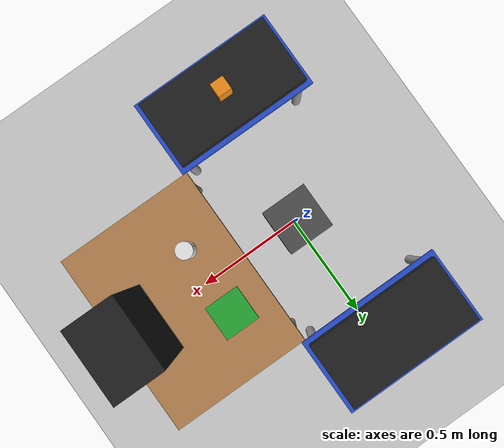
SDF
<?xml version="1.0" ?>
<sdf version="1.7">
  <world name="mery6_workcell">

    <plugin name="ros_link_attacher_plugin" filename="libgazebo_ros_link_attacher.so"/>

    <light name="sun" type="directional">
      <cast_shadows>1</cast_shadows>
      <pose>0 0 10 0 0 0</pose>
      <diffuse>0.8 0.8 0.8 1</diffuse>
      <specular>0.2 0.2 0.2 1</specular>
      <direction>-0.5 0.1 -0.9</direction>
    </light>

    <model name="ground_plane">
      <static>1</static>
      <link name="ground_plane_link">
        <collision name="collision">
          <geometry><plane><normal>0 0 1</normal><size>100 100</size></plane></geometry>
          <surface><friction><ode><mu>100</mu><mu2>50</mu2></ode></friction></surface>
        </collision>
        <visual name="visual">
          <cast_shadows>0</cast_shadows>
          <geometry><plane><normal>0 0 1</normal><size>100 100</size></plane></geometry>
          <material><script><uri>file://media/materials/scripts/gazebo.material</uri><name>Gazebo/Grey</name></script></material>
        </visual>
      </link>
    </model>

    <physics type="ode">
      <max_step_size>0.001</max_step_size>
      <real_time_factor>1</real_time_factor>
      <real_time_update_rate>1000</real_time_update_rate>
    </physics>
    <gravity>0 0 -9.8</gravity>
    <scene>
      <ambient>0.4 0.4 0.4 1</ambient>
      <background>0.7 0.7 0.7 1</background>
      <shadows>1</shadows>
    </scene>

    <!-- Robot pedestal -->
    <model name="pedestal">
      <static>1</static>
      <pose>0 0 0.20 0 0 0</pose>
      <link name="link">
        <collision name="collision"><geometry><box><size>0.20 0.20 0.40</size></box></geometry></collision>
        <visual name="visual">
          <geometry><box><size>0.20 0.20 0.40</size></box></geometry>
          <material><script><uri>file://media/materials/scripts/gazebo.material</uri><name>Gazebo/DarkGrey</name></script></material>
        </visual>
      </link>
    </model>

    <!-- ===================== Barista fixtures (unchanged from barista.world) ===================== -->
    <model name="table">
      <static>1</static>
      <pose>0.55 0 0 0 0 0</pose>
      <link name="link">
        <collision name="top"><pose>0 0 0.40 0 0 0</pose><geometry><box><size>0.60 0.80 0.03</size></box></geometry>
          <surface><friction><ode><mu>0.8</mu><mu2>0.8</mu2></ode></friction></surface></collision>
        <visual name="top_visual"><pose>0 0 0.40 0 0 0</pose><geometry><box><size>0.60 0.80 0.03</size></box></geometry>
          <material><script><uri>file://media/materials/scripts/gazebo.material</uri><name>Gazebo/Wood</name></script></material></visual>
        <collision name="leg1"><pose> 0.27  0.37 0.1925 0 0 0</pose><geometry><cylinder><radius>0.02</radius><length>0.385</length></cylinder></geometry></collision>
        <visual    name="leg1_v"><pose> 0.27  0.37 0.1925 0 0 0</pose><geometry><cylinder><radius>0.02</radius><length>0.385</length></cylinder></geometry>
          <material><script><uri>file://media/materials/scripts/gazebo.material</uri><name>Gazebo/Grey</name></script></material></visual>
        <collision name="leg2"><pose> 0.27 -0.37 0.1925 0 0 0</pose><geometry><cylinder><radius>0.02</radius><length>0.385</length></cylinder></geometry></collision>
        <visual    name="leg2_v"><pose> 0.27 -0.37 0.1925 0 0 0</pose><geometry><cylinder><radius>0.02</radius><length>0.385</length></cylinder></geometry>
          <material><script><uri>file://media/materials/scripts/gazebo.material</uri><name>Gazebo/Grey</name></script></material></visual>
        <collision name="leg3"><pose>-0.27  0.37 0.1925 0 0 0</pose><geometry><cylinder><radius>0.02</radius><length>0.385</length></cylinder></geometry></collision>
        <visual    name="leg3_v"><pose>-0.27  0.37 0.1925 0 0 0</pose><geometry><cylinder><radius>0.02</radius><length>0.385</length></cylinder></geometry>
          <material><script><uri>file://media/materials/scripts/gazebo.material</uri><name>Gazebo/Grey</name></script></material></visual>
        <collision name="leg4"><pose>-0.27 -0.37 0.1925 0 0 0</pose><geometry><cylinder><radius>0.02</radius><length>0.385</length></cylinder></geometry></collision>
        <visual    name="leg4_v"><pose>-0.27 -0.37 0.1925 0 0 0</pose><geometry><cylinder><radius>0.02</radius><length>0.385</length></cylinder></geometry>
          <material><script><uri>file://media/materials/scripts/gazebo.material</uri><name>Gazebo/Grey</name></script></material></visual>
      </link>
    </model>

    <model name="cup">
      <static>0</static>
      <pose>0.42 -0.15 0.465 0 0 0</pose>
      <link name="link">
        <inertial>
          <mass>0.05</mass>
          <inertia><ixx>5.7e-05</ixx><iyy>5.7e-05</iyy><izz>3.1e-05</izz><ixy>0</ixy><ixz>0</ixz><iyz>0</iyz></inertia>
        </inertial>
        <collision name="collision">
          <geometry><cylinder><radius>0.035</radius><length>0.10</length></cylinder></geometry>
          <surface><friction><ode><mu>1.0</mu><mu2>1.0</mu2></ode></friction>
            <contact><ode><kp>1e6</kp><kd>100</kd><min_depth>0.001</min_depth></ode></contact></surface>
        </collision>
        <visual name="visual">
          <geometry><cylinder><radius>0.035</radius><length>0.10</length></cylinder></geometry>
          <material><script><uri>file://media/materials/scripts/gazebo.material</uri><name>Gazebo/White</name></script></material>
        </visual>
      </link>
    </model>

    <model name="coffee_machine">
      <static>1</static>
      <pose>0.75 0 0.615 0 0 0</pose>
      <link name="link">
        <collision name="collision"><geometry><box><size>0.20 0.30 0.40</size></box></geometry></collision>
        <visual name="visual">
          <geometry><box><size>0.20 0.30 0.40</size></box></geometry>
          <material><script><uri>file://media/materials/scripts/gazebo.material</uri><name>Gazebo/Black</name></script></material>
        </visual>
      </link>
    </model>

    <model name="place_pad">
      <static>1</static>
      <pose>0.42 0.15 0.42 0 0 0</pose>
      <link name="link">
        <collision name="collision"><geometry><box><size>0.15 0.15 0.01</size></box></geometry>
          <surface><friction><ode><mu>1.0</mu><mu2>1.0</mu2></ode></friction></surface></collision>
        <visual name="visual">
          <geometry><box><size>0.15 0.15 0.01</size></box></geometry>
          <material><script><uri>file://media/materials/scripts/gazebo.material</uri><name>Gazebo/Green</name></script></material>
        </visual>
      </link>
    </model>

    <!-- ===================== Conveyor fixtures (left / right of the robot, static) ===================== -->
    <model name="input_belt">
      <static>1</static>
      <pose>-0.05 -0.58 0 0 0 0</pose>
      <link name="link">
        <collision name="body"><pose>0 0 0.39 0 0 0</pose><geometry><box><size>0.60 0.30 0.05</size></box></geometry>
          <surface><friction><ode><mu>1.0</mu><mu2>1.0</mu2></ode></friction></surface></collision>
        <visual name="body_visual"><pose>0 0 0.39 0 0 0</pose><geometry><box><size>0.60 0.30 0.05</size></box></geometry>
          <material><script><uri>file://media/materials/scripts/gazebo.material</uri><name>Gazebo/Black</name></script></material></visual>
        <visual name="frame_visual"><pose>0 0 0.36 0 0 0</pose><geometry><box><size>0.64 0.34 0.02</size></box></geometry>
          <material><script><uri>file://media/materials/scripts/gazebo.material</uri><name>Gazebo/Blue</name></script></material></visual>
        <collision name="leg1"><pose> 0.28  0.13 0.175 0 0 0</pose><geometry><cylinder><radius>0.02</radius><length>0.35</length></cylinder></geometry></collision>
        <visual    name="leg1_v"><pose> 0.28  0.13 0.175 0 0 0</pose><geometry><cylinder><radius>0.02</radius><length>0.35</length></cylinder></geometry>
          <material><script><uri>file://media/materials/scripts/gazebo.material</uri><name>Gazebo/Grey</name></script></material></visual>
        <collision name="leg2"><pose> 0.28 -0.13 0.175 0 0 0</pose><geometry><cylinder><radius>0.02</radius><length>0.35</length></cylinder></geometry></collision>
        <visual    name="leg2_v"><pose> 0.28 -0.13 0.175 0 0 0</pose><geometry><cylinder><radius>0.02</radius><length>0.35</length></cylinder></geometry>
          <material><script><uri>file://media/materials/scripts/gazebo.material</uri><name>Gazebo/Grey</name></script></material></visual>
        <collision name="leg3"><pose>-0.28  0.13 0.175 0 0 0</pose><geometry><cylinder><radius>0.02</radius><length>0.35</length></cylinder></geometry></collision>
        <visual    name="leg3_v"><pose>-0.28  0.13 0.175 0 0 0</pose><geometry><cylinder><radius>0.02</radius><length>0.35</length></cylinder></geometry>
          <material><script><uri>file://media/materials/scripts/gazebo.material</uri><name>Gazebo/Grey</name></script></material></visual>
        <collision name="leg4"><pose>-0.28 -0.13 0.175 0 0 0</pose><geometry><cylinder><radius>0.02</radius><length>0.35</length></cylinder></geometry></collision>
        <visual    name="leg4_v"><pose>-0.28 -0.13 0.175 0 0 0</pose><geometry><cylinder><radius>0.02</radius><length>0.35</length></cylinder></geometry>
          <material><script><uri>file://media/materials/scripts/gazebo.material</uri><name>Gazebo/Grey</name></script></material></visual>
      </link>
    </model>

    <model name="output_belt">
      <static>1</static>
      <pose>-0.05 0.58 0 0 0 0</pose>
      <link name="link">
        <collision name="body"><pose>0 0 0.39 0 0 0</pose><geometry><box><size>0.60 0.30 0.05</size></box></geometry>
          <surface><friction><ode><mu>1.0</mu><mu2>1.0</mu2></ode></friction></surface></collision>
        <visual name="body_visual"><pose>0 0 0.39 0 0 0</pose><geometry><box><size>0.60 0.30 0.05</size></box></geometry>
          <material><script><uri>file://media/materials/scripts/gazebo.material</uri><name>Gazebo/Black</name></script></material></visual>
        <visual name="frame_visual"><pose>0 0 0.36 0 0 0</pose><geometry><box><size>0.64 0.34 0.02</size></box></geometry>
          <material><script><uri>file://media/materials/scripts/gazebo.material</uri><name>Gazebo/Blue</name></script></material></visual>
        <collision name="leg1"><pose> 0.28  0.13 0.175 0 0 0</pose><geometry><cylinder><radius>0.02</radius><length>0.35</length></cylinder></geometry></collision>
        <visual    name="leg1_v"><pose> 0.28  0.13 0.175 0 0 0</pose><geometry><cylinder><radius>0.02</radius><length>0.35</length></cylinder></geometry>
          <material><script><uri>file://media/materials/scripts/gazebo.material</uri><name>Gazebo/Grey</name></script></material></visual>
        <collision name="leg2"><pose> 0.28 -0.13 0.175 0 0 0</pose><geometry><cylinder><radius>0.02</radius><length>0.35</length></cylinder></geometry></collision>
        <visual    name="leg2_v"><pose> 0.28 -0.13 0.175 0 0 0</pose><geometry><cylinder><radius>0.02</radius><length>0.35</length></cylinder></geometry>
          <material><script><uri>file://media/materials/scripts/gazebo.material</uri><name>Gazebo/Grey</name></script></material></visual>
        <collision name="leg3"><pose>-0.28  0.13 0.175 0 0 0</pose><geometry><cylinder><radius>0.02</radius><length>0.35</length></cylinder></geometry></collision>
        <visual    name="leg3_v"><pose>-0.28  0.13 0.175 0 0 0</pose><geometry><cylinder><radius>0.02</radius><length>0.35</length></cylinder></geometry>
          <material><script><uri>file://media/materials/scripts/gazebo.material</uri><name>Gazebo/Grey</name></script></material></visual>
        <collision name="leg4"><pose>-0.28 -0.13 0.175 0 0 0</pose><geometry><cylinder><radius>0.02</radius><length>0.35</length></cylinder></geometry></collision>
        <visual    name="leg4_v"><pose>-0.28 -0.13 0.175 0 0 0</pose><geometry><cylinder><radius>0.02</radius><length>0.35</length></cylinder></geometry>
          <material><script><uri>file://media/materials/scripts/gazebo.material</uri><name>Gazebo/Grey</name></script></material></visual>
      </link>
    </model>

    <model name="product">
      <static>0</static>
      <pose>-0.05 -0.58 0.455 0 0 0</pose>
      <link name="link">
        <inertial>
          <mass>0.1</mass>
          <inertia><ixx>8.3e-05</ixx><iyy>8.3e-05</iyy><izz>6.0e-05</izz><ixy>0</ixy><ixz>0</ixz><iyz>0</iyz></inertia>
        </inertial>
        <collision name="collision">
          <geometry><box><size>0.06 0.06 0.08</size></box></geometry>
          <surface><friction><ode><mu>1.0</mu><mu2>1.0</mu2></ode></friction>
            <contact><ode><kp>1e6</kp><kd>100</kd><min_depth>0.001</min_depth></ode></contact></surface>
        </collision>
        <visual name="visual">
          <geometry><box><size>0.06 0.06 0.08</size></box></geometry>
          <material><script><uri>file://media/materials/scripts/gazebo.material</uri><name>Gazebo/Orange</name></script></material>
        </visual>
      </link>
    </model>

    <gui fullscreen="0">
      <camera name="user_camera">
        <pose>2.4 -2.2 1.8 0 0.4 2.4</pose>
        <view_controller>orbit</view_controller>
      </camera>
    </gui>

  </world>
</sdf>
